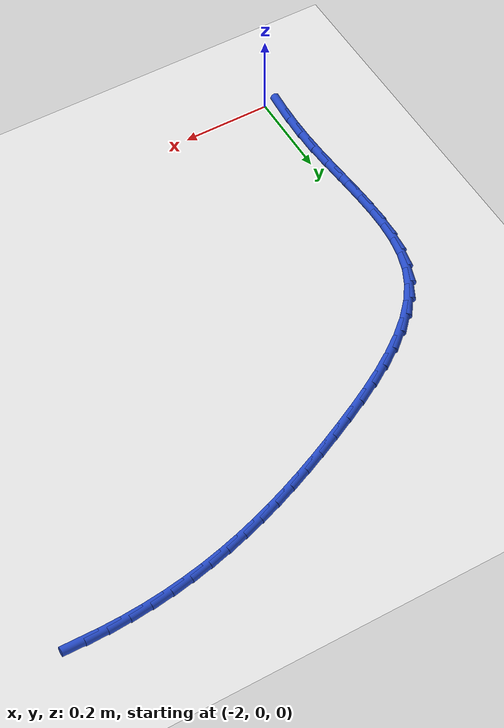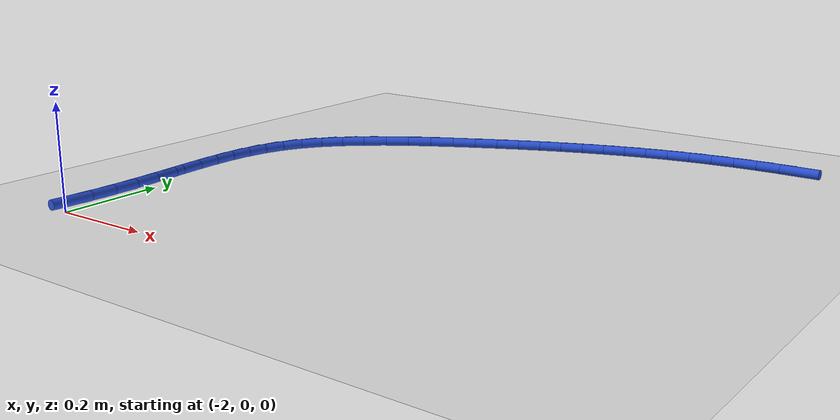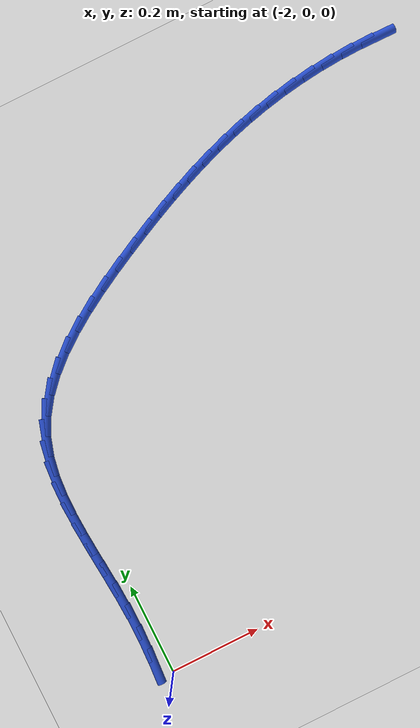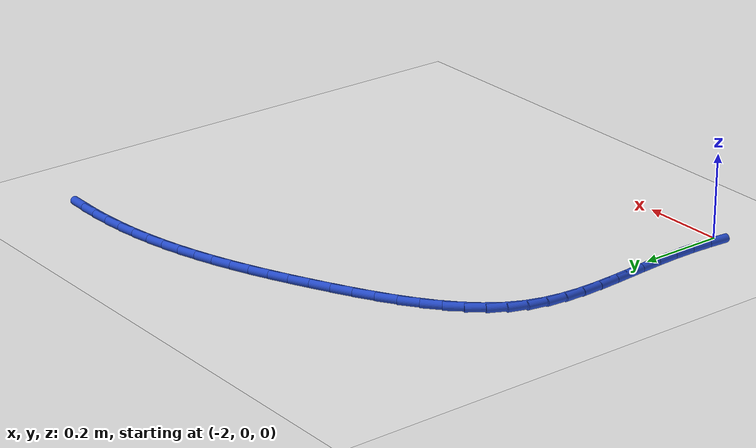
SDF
<sdf version="1.6">
 <world name="default">
  <model name="ground_plane">
   <static>1</static>
   <link name="link">
    <collision name="collision">
     <geometry><plane><normal>0 0 1</normal><size>100 100</size></plane></geometry>
     <surface><friction><ode><mu>100</mu><mu2>50</mu2></ode></friction></surface>
    </collision>
    <visual name="visual">
     <cast_shadows>0</cast_shadows>
     <geometry><plane><normal>0 0 1</normal><size>100 100</size></plane></geometry>
     <material>
      <script><uri>file://media/materials/scripts/gazebo.material</uri><name>Gazebo/WhiteGlow</name></script>
     </material>
    </visual>
   </link>
  </model>
  <model name="line">
   <link name="link_33">
    <pose>-1.011770442358572 1.0063293342441297 0.01 0 1.57 -0.017354089174362174</pose>
    <collision name="collision">
     <geometry><cylinder><radius>0.01</radius><length>0.08</length></cylinder></geometry>
    </collision>
    <visual name="visual">
     <material>
      <script><name>Gazebo/Blue</name><uri>file://media/materials/scripts/gazebo.material</uri></script>
     </material>
     <geometry><cylinder><radius>0.01</radius><length>0.08</length></cylinder></geometry>
    </visual>
   </link>
   <link name="link_34">
    <pose>-1.0594543701429253 1.007156928461393 0.01 0 1.57 0.02647153548212108</pose>
    <collision name="collision">
     <geometry><cylinder><radius>0.01</radius><length>0.08</length></cylinder></geometry>
    </collision>
    <visual name="visual">
     <material>
      <script><name>Gazebo/Blue</name><uri>file://media/materials/scripts/gazebo.material</uri></script>
     </material>
     <geometry><cylinder><radius>0.01</radius><length>0.08</length></cylinder></geometry>
    </visual>
   </link>
   <link name="link_35">
    <pose>-1.1070735830672032 1.0058960802532328 0.01 0 1.57 0.06913082343619277</pose>
    <collision name="collision">
     <geometry><cylinder><radius>0.01</radius><length>0.08</length></cylinder></geometry>
    </collision>
    <visual name="visual">
     <material>
      <script><name>Gazebo/Blue</name><uri>file://media/materials/scripts/gazebo.material</uri></script>
     </material>
     <geometry><cylinder><radius>0.01</radius><length>0.08</length></cylinder></geometry>
    </visual>
   </link>
   <link name="link_36">
    <pose>-1.1544671381828704 1.002614495454234 0.01 0 1.57 0.11090141057207606</pose>
    <collision name="collision">
     <geometry><cylinder><radius>0.01</radius><length>0.08</length></cylinder></geometry>
    </collision>
    <visual name="visual">
     <material>
      <script><name>Gazebo/Blue</name><uri>file://media/materials/scripts/gazebo.material</uri></script>
     </material>
     <geometry><cylinder><radius>0.01</radius><length>0.08</length></cylinder></geometry>
    </visual>
   </link>
   <link name="link_37">
    <pose>-1.2014740925413911 0.9973798798989809 0.01 0 1.57 0.15206765910142425</pose>
    <collision name="collision">
     <geometry><cylinder><radius>0.01</radius><length>0.08</length></cylinder></geometry>
    </collision>
    <visual name="visual">
     <material>
      <script><name>Gazebo/Blue</name><uri>file://media/materials/scripts/gazebo.material</uri></script>
     </material>
     <geometry><cylinder><radius>0.01</radius><length>0.08</length></cylinder></geometry>
    </visual>
   </link>
   <link name="link_38">
    <pose>-1.247933503194229 0.9902599394220583 0.01 0 1.57 0.19281319013708983</pose>
    <collision name="collision">
     <geometry><cylinder><radius>0.01</radius><length>0.08</length></cylinder></geometry>
    </collision>
    <visual name="visual">
     <material>
      <script><name>Gazebo/Blue</name><uri>file://media/materials/scripts/gazebo.material</uri></script>
     </material>
     <geometry><cylinder><radius>0.01</radius><length>0.08</length></cylinder></geometry>
    </visual>
   </link>
   <link name="link_39">
    <pose>-1.2937083928378108 0.9813229110403985 0.01 0 1.57 0.23237854974749306</pose>
    <collision name="collision">
     <geometry><cylinder><radius>0.01</radius><length>0.08</length></cylinder></geometry>
    </collision>
    <visual name="visual">
     <material>
      <script><name>Gazebo/Blue</name><uri>file://media/materials/scripts/gazebo.material</uri></script>
     </material>
     <geometry><cylinder><radius>0.01</radius><length>0.08</length></cylinder></geometry>
    </visual>
   </link>
   <link name="link_40">
    <pose>-1.3388452807901616 0.970641098849715 0.01 0 1.57 0.2700132768177109</pose>
    <collision name="collision">
     <geometry><cylinder><radius>0.01</radius><length>0.08</length></cylinder></geometry>
    </collision>
    <visual name="visual">
     <material>
      <script><name>Gazebo/Blue</name><uri>file://media/materials/scripts/gazebo.material</uri></script>
     </material>
     <geometry><cylinder><radius>0.01</radius><length>0.08</length></cylinder></geometry>
    </visual>
   </link>
   <link name="link_41">
    <pose>-1.3834754928381867 0.9582886866238713 0.01 0 1.57 0.3053333354892284</pose>
    <collision name="collision">
     <geometry><cylinder><radius>0.01</radius><length>0.08</length></cylinder></geometry>
    </collision>
    <visual name="visual">
     <material>
      <script><name>Gazebo/Blue</name><uri>file://media/materials/scripts/gazebo.material</uri></script>
     </material>
     <geometry><cylinder><radius>0.01</radius><length>0.08</length></cylinder></geometry>
    </visual>
   </link>
   <link name="link_42">
    <pose>-1.427730812893504 0.9443398682907568 0.01 0 1.57 0.3380254209365037</pose>
    <collision name="collision">
     <geometry><cylinder><radius>0.01</radius><length>0.08</length></cylinder></geometry>
    </collision>
    <visual name="visual">
     <material>
      <script><name>Gazebo/Blue</name><uri>file://media/materials/scripts/gazebo.material</uri></script>
     </material>
     <geometry><cylinder><radius>0.01</radius><length>0.08</length></cylinder></geometry>
    </visual>
   </link>
   <link name="link_43">
    <pose>-1.4717430248677315 0.9288688377782597 0.01 0 1.57 0.3678501503930944</pose>
    <collision name="collision">
     <geometry><cylinder><radius>0.01</radius><length>0.08</length></cylinder></geometry>
    </collision>
    <visual name="visual">
     <material>
      <script><name>Gazebo/Blue</name><uri>file://media/materials/scripts/gazebo.material</uri></script>
     </material>
     <geometry><cylinder><radius>0.01</radius><length>0.08</length></cylinder></geometry>
    </visual>
   </link>
   <link name="link_44">
    <pose>-1.5156439126724897 0.911949789014269 0.01 0 1.57 0.394641956208301</pose>
    <collision name="collision">
     <geometry><cylinder><radius>0.01</radius><length>0.08</length></cylinder></geometry>
    </collision>
    <visual name="visual">
     <material>
      <script><name>Gazebo/Blue</name><uri>file://media/materials/scripts/gazebo.material</uri></script>
     </material>
     <geometry><cylinder><radius>0.01</radius><length>0.08</length></cylinder></geometry>
    </visual>
   </link>
   <link name="link_45">
    <pose>-1.5595652602193946 0.8936569159266732 0.01 0 1.57 0.41830467473521493</pose>
    <collision name="collision">
     <geometry><cylinder><radius>0.01</radius><length>0.08</length></cylinder></geometry>
    </collision>
    <visual name="visual">
     <material>
      <script><name>Gazebo/Blue</name><uri>file://media/materials/scripts/gazebo.material</uri></script>
     </material>
     <geometry><cylinder><radius>0.01</radius><length>0.08</length></cylinder></geometry>
    </visual>
   </link>
   <link name="link_46">
    <pose>-1.603638851420067 0.8740644124433615 0.01 0 1.57 0.43880418753843414</pose>
    <collision name="collision">
     <geometry><cylinder><radius>0.01</radius><length>0.08</length></cylinder></geometry>
    </collision>
    <visual name="visual">
     <material>
      <script><name>Gazebo/Blue</name><uri>file://media/materials/scripts/gazebo.material</uri></script>
     </material>
     <geometry><cylinder><radius>0.01</radius><length>0.08</length></cylinder></geometry>
    </visual>
   </link>
   <link name="link_47">
    <pose>-1.6479964701861238 0.8532464724922223 0.01 0 1.57 0.45616170460569394</pose>
    <collision name="collision">
     <geometry><cylinder><radius>0.01</radius><length>0.08</length></cylinder></geometry>
    </collision>
    <visual name="visual">
     <material>
      <script><name>Gazebo/Blue</name><uri>file://media/materials/scripts/gazebo.material</uri></script>
     </material>
     <geometry><cylinder><radius>0.01</radius><length>0.08</length></cylinder></geometry>
    </visual>
   </link>
   <link name="link_48">
    <pose>-1.692769735733515 0.831277245666697 0.01 0 1.57 0.473330192097099</pose>
    <collision name="collision">
     <geometry><cylinder><radius>0.01</radius><length>0.08</length></cylinder></geometry>
    </collision>
    <visual name="visual">
     <material>
      <script><name>Gazebo/Blue</name><uri>file://media/materials/scripts/gazebo.material</uri></script>
     </material>
     <geometry><cylinder><radius>0.01</radius><length>0.08</length></cylinder></geometry>
    </visual>
   </link>
   <link name="link_49">
    <pose>-1.7378789513808093 0.8081739974080445 0.01 0 1.57 0.4990859575301556</pose>
    <collision name="collision">
     <geometry><cylinder><radius>0.01</radius><length>0.08</length></cylinder></geometry>
    </collision>
    <visual name="visual">
     <material>
      <script><name>Gazebo/Blue</name><uri>file://media/materials/scripts/gazebo.material</uri></script>
     </material>
     <geometry><cylinder><radius>0.01</radius><length>0.08</length></cylinder></geometry>
    </visual>
   </link>
   <link name="link_50">
    <pose>-1.7826187959940611 0.7837855812348622 0.01 0 1.57 0.5357770178642751</pose>
    <collision name="collision">
     <geometry><cylinder><radius>0.01</radius><length>0.08</length></cylinder></geometry>
    </collision>
    <visual name="visual">
     <material>
      <script><name>Gazebo/Blue</name><uri>file://media/materials/scripts/gazebo.material</uri></script>
     </material>
     <geometry><cylinder><radius>0.01</radius><length>0.08</length></cylinder></geometry>
    </visual>
   </link>
   <link name="link_51">
    <pose>-1.826168716723446 0.7579298314261004 0.01 0 1.57 0.5848675909256249</pose>
    <collision name="collision">
     <geometry><cylinder><radius>0.01</radius><length>0.08</length></cylinder></geometry>
    </collision>
    <visual name="visual">
     <material>
      <script><name>Gazebo/Blue</name><uri>file://media/materials/scripts/gazebo.material</uri></script>
     </material>
     <geometry><cylinder><radius>0.01</radius><length>0.08</length></cylinder></geometry>
    </visual>
   </link>
   <link name="link_52">
    <pose>-1.8677081607191417 0.7304245822607092 0.01 0 1.57 0.6485347987169418</pose>
    <collision name="collision">
     <geometry><cylinder><radius>0.01</radius><length>0.08</length></cylinder></geometry>
    </collision>
    <visual name="visual">
     <material>
      <script><name>Gazebo/Blue</name><uri>file://media/materials/scripts/gazebo.material</uri></script>
     </material>
     <geometry><cylinder><radius>0.01</radius><length>0.08</length></cylinder></geometry>
    </visual>
   </link>
   <link name="link_53">
    <pose>-1.9064165751313236 0.7010876680176386 0.01 0 1.57 0.7296478006516522</pose>
    <collision name="collision">
     <geometry><cylinder><radius>0.01</radius><length>0.08</length></cylinder></geometry>
    </collision>
    <visual name="visual">
     <material>
      <script><name>Gazebo/Blue</name><uri>file://media/materials/scripts/gazebo.material</uri></script>
     </material>
     <geometry><cylinder><radius>0.01</radius><length>0.08</length></cylinder></geometry>
    </visual>
   </link>
   <link name="link_54">
    <pose>-1.9414734071101702 0.669736922975839 0.01 0 1.57 0.8315524580705179</pose>
    <collision name="collision">
     <geometry><cylinder><radius>0.01</radius><length>0.08</length></cylinder></geometry>
    </collision>
    <visual name="visual">
     <material>
      <script><name>Gazebo/Blue</name><uri>file://media/materials/scripts/gazebo.material</uri></script>
     </material>
     <geometry><cylinder><radius>0.01</radius><length>0.08</length></cylinder></geometry>
    </visual>
   </link>
   <link name="link_55">
    <pose>-1.9720581038058582 0.6361901814142601 0.01 0 1.57 0.9573745315002794</pose>
    <collision name="collision">
     <geometry><cylinder><radius>0.01</radius><length>0.08</length></cylinder></geometry>
    </collision>
    <visual name="visual">
     <material>
      <script><name>Gazebo/Blue</name><uri>file://media/materials/scripts/gazebo.material</uri></script>
     </material>
     <geometry><cylinder><radius>0.01</radius><length>0.08</length></cylinder></geometry>
    </visual>
   </link>
   <link name="link_56">
    <pose>-1.9973501123685637 0.6002652776118523 0.01 0 1.57 1.1080111142095896</pose>
    <collision name="collision">
     <geometry><cylinder><radius>0.01</radius><length>0.08</length></cylinder></geometry>
    </collision>
    <visual name="visual">
     <material>
      <script><name>Gazebo/Blue</name><uri>file://media/materials/scripts/gazebo.material</uri></script>
     </material>
     <geometry><cylinder><radius>0.01</radius><length>0.08</length></cylinder></geometry>
    </visual>
   </link>
   <link name="link_57">
    <pose>-2.016548685299851 0.5617852047945094 0.01 0 1.57 1.2628221735462937</pose>
    <collision name="collision">
     <geometry><cylinder><radius>0.01</radius><length>0.08</length></cylinder></geometry>
    </collision>
    <visual name="visual">
     <material>
      <script><name>Gazebo/Blue</name><uri>file://media/materials/scripts/gazebo.material</uri></script>
     </material>
     <geometry><cylinder><radius>0.01</radius><length>0.08</length></cylinder></geometry>
    </visual>
   </link>
   <link name="link_58">
    <pose>-2.0295965057450793 0.5207666068420831 0.01 0 1.57 1.3927543149951749</pose>
    <collision name="collision">
     <geometry><cylinder><radius>0.01</radius><length>0.08</length></cylinder></geometry>
    </collision>
    <visual name="visual">
     <material>
      <script><name>Gazebo/Blue</name><uri>file://media/materials/scripts/gazebo.material</uri></script>
     </material>
     <geometry><cylinder><radius>0.01</radius><length>0.08</length></cylinder></geometry>
    </visual>
   </link>
   <link name="link_59">
    <pose>-2.0373869412470103 0.47747376425903615 0.01 0 1.57 1.493917456766035</pose>
    <collision name="collision">
     <geometry><cylinder><radius>0.01</radius><length>0.08</length></cylinder></geometry>
    </collision>
    <visual name="visual">
     <material>
      <script><name>Gazebo/Blue</name><uri>file://media/materials/scripts/gazebo.material</uri></script>
     </material>
     <geometry><cylinder><radius>0.01</radius><length>0.08</length></cylinder></geometry>
    </visual>
   </link>
   <link name="link_60">
    <pose>-2.0408754027772877 0.4321871187757354 0.01 0 1.57 1.567777218730004</pose>
    <collision name="collision">
     <geometry><cylinder><radius>0.01</radius><length>0.08</length></cylinder></geometry>
    </collision>
    <visual name="visual">
     <material>
      <script><name>Gazebo/Blue</name><uri>file://media/materials/scripts/gazebo.material</uri></script>
     </material>
     <geometry><cylinder><radius>0.01</radius><length>0.08</length></cylinder></geometry>
    </visual>
   </link>
   <link name="link_61">
    <pose>-2.0410173013075603 0.3851871121225471 0.01 0 1.57 -1.5243890836388692</pose>
    <collision name="collision">
     <geometry><cylinder><radius>0.01</radius><length>0.08</length></cylinder></geometry>
    </collision>
    <visual name="visual">
     <material>
      <script><name>Gazebo/Blue</name><uri>file://media/materials/scripts/gazebo.material</uri></script>
     </material>
     <geometry><cylinder><radius>0.01</radius><length>0.08</length></cylinder></geometry>
    </visual>
   </link>
   <link name="link_62">
    <pose>-2.0387680478094747 0.3367541860298386 0.01 0 1.57 -1.4966165736617398</pose>
    <collision name="collision">
     <geometry><cylinder><radius>0.01</radius><length>0.08</length></cylinder></geometry>
    </collision>
    <visual name="visual">
     <material>
      <script><name>Gazebo/Blue</name><uri>file://media/materials/scripts/gazebo.material</uri></script>
     </material>
     <geometry><cylinder><radius>0.01</radius><length>0.08</length></cylinder></geometry>
    </visual>
   </link>
   <link name="link_63">
    <pose>-2.0350830532546786 0.2871687822279757 0.01 0 1.57 -1.488431836368806</pose>
    <collision name="collision">
     <geometry><cylinder><radius>0.01</radius><length>0.08</length></cylinder></geometry>
    </collision>
    <visual name="visual">
     <material>
      <script><name>Gazebo/Blue</name><uri>file://media/materials/scripts/gazebo.material</uri></script>
     </material>
     <geometry><cylinder><radius>0.01</radius><length>0.08</length></cylinder></geometry>
    </visual>
   </link>
   <link name="link_64">
    <pose>-2.0309177286148183 0.23671134244732578 0.01 0 1.57 -1.4986336305554313</pose>
    <collision name="collision">
     <geometry><cylinder><radius>0.01</radius><length>0.08</length></cylinder></geometry>
    </collision>
    <visual name="visual">
     <material>
      <script><name>Gazebo/Blue</name><uri>file://media/materials/scripts/gazebo.material</uri></script>
     </material>
     <geometry><cylinder><radius>0.01</radius><length>0.08</length></cylinder></geometry>
    </visual>
   </link>
   <link name="link_65">
    <pose>-2.0272274848615406 0.18566230841825507 0.01 0 1.57 -1.526826560147353</pose>
    <collision name="collision">
     <geometry><cylinder><radius>0.01</radius><length>0.08</length></cylinder></geometry>
    </collision>
    <visual name="visual">
     <material>
      <script><name>Gazebo/Blue</name><uri>file://media/materials/scripts/gazebo.material</uri></script>
     </material>
     <geometry><cylinder><radius>0.01</radius><length>0.08</length></cylinder></geometry>
    </visual>
   </link>
   <link name="link_66">
    <pose>-2.0249677329664926 0.13430212187112983 0.01 0 1.57 -1.5702740989880162</pose>
    <collision name="collision">
     <geometry><cylinder><radius>0.01</radius><length>0.08</length></cylinder></geometry>
    </collision>
    <visual name="visual">
     <material>
      <script><name>Gazebo/Blue</name><uri>file://media/materials/scripts/gazebo.material</uri></script>
     </material>
     <geometry><cylinder><radius>0.01</radius><length>0.08</length></cylinder></geometry>
    </visual>
   </link>
   <link name="link_67">
    <pose>-2.0249408862893046 0.08289414551727994 0.01 0 1.57 1.5307612153690153</pose>
    <collision name="collision">
     <geometry><cylinder><radius>0.01</radius><length>0.08</length></cylinder></geometry>
    </collision>
    <visual name="visual">
     <material>
      <script><name>Gazebo/Blue</name><uri>file://media/materials/scripts/gazebo.material</uri></script>
     </material>
     <geometry><cylinder><radius>0.01</radius><length>0.08</length></cylinder></geometry>
    </visual>
   </link>
   <link name="link_68">
    <pose>-2.0269957396386817 0.031595290279857406 0.01 0 1.57 1.5000644835520844</pose>
    <collision name="collision">
     <geometry><cylinder><radius>0.01</radius><length>0.08</length></cylinder></geometry>
    </collision>
    <visual name="visual">
     <material>
      <script><name>Gazebo/Blue</name><uri>file://media/materials/scripts/gazebo.material</uri></script>
     </material>
     <geometry><cylinder><radius>0.01</radius><length>0.08</length></cylinder></geometry>
    </visual>
   </link>
  </model>
 </world>
</sdf>
